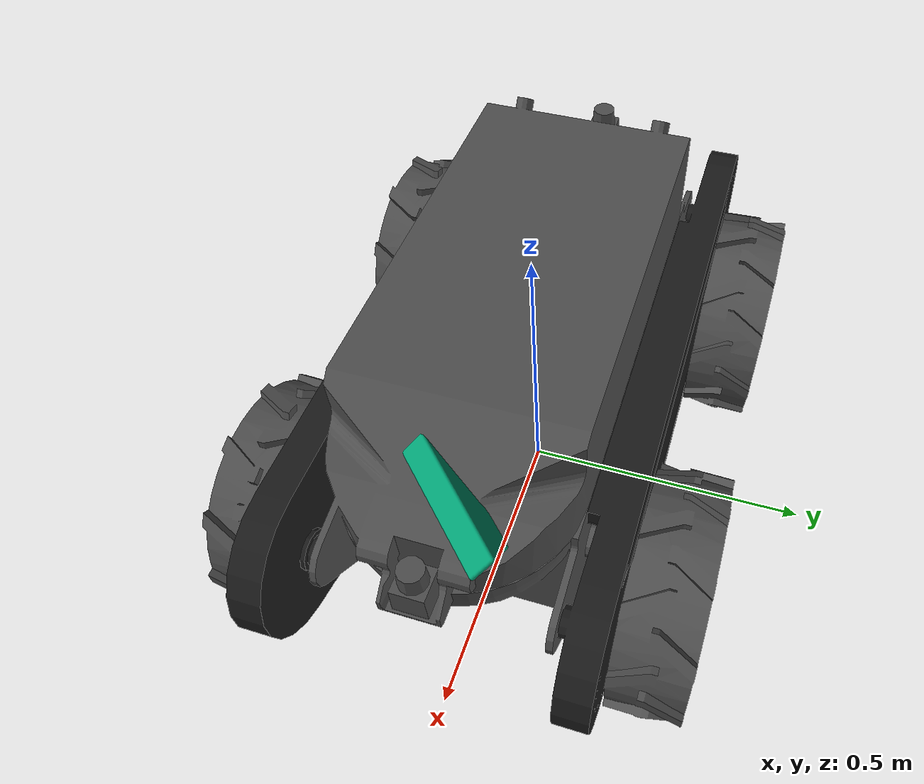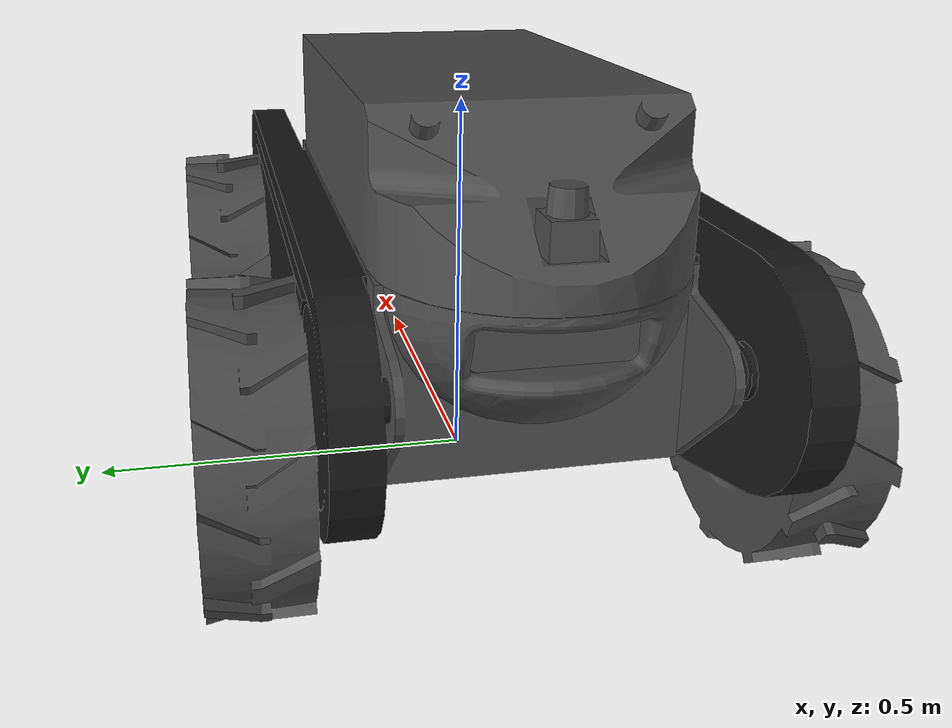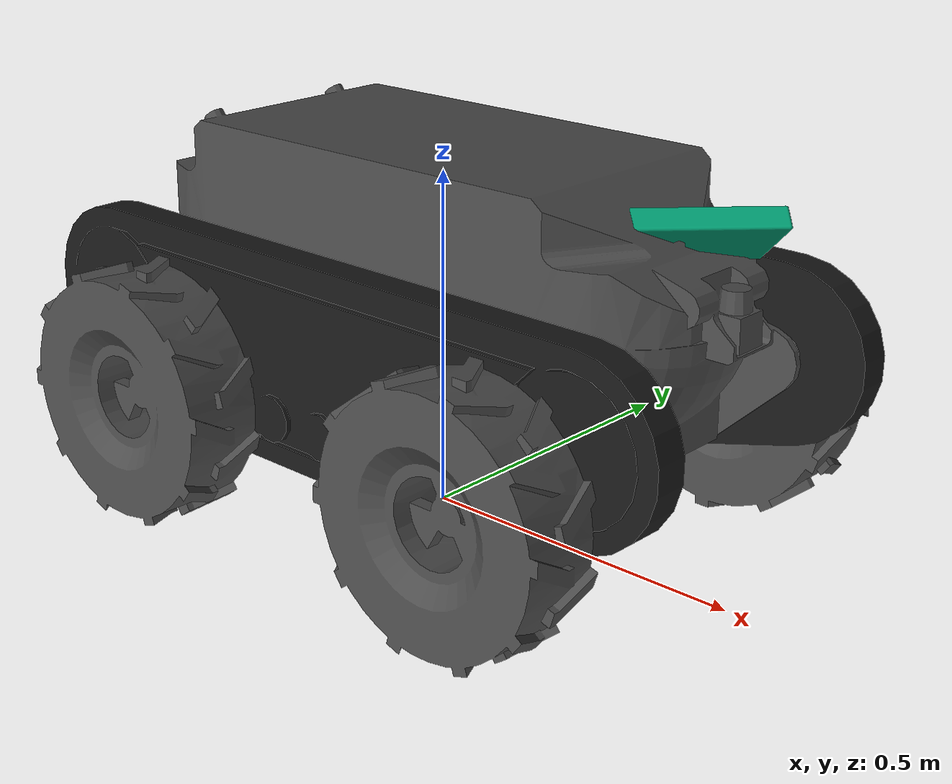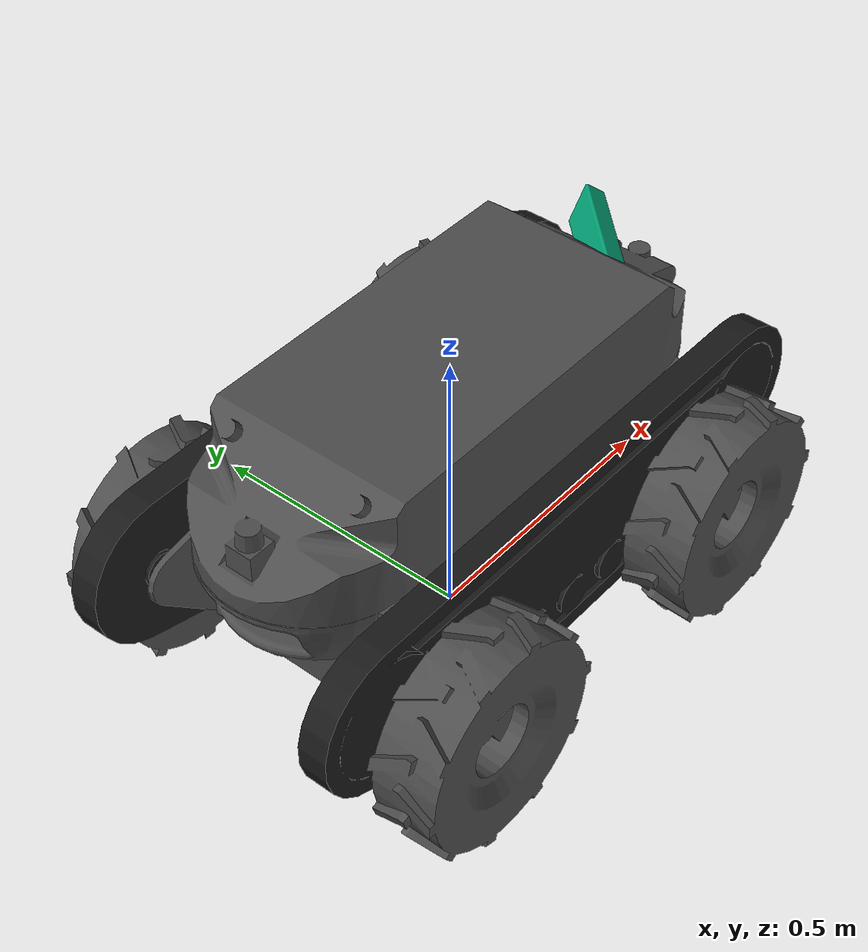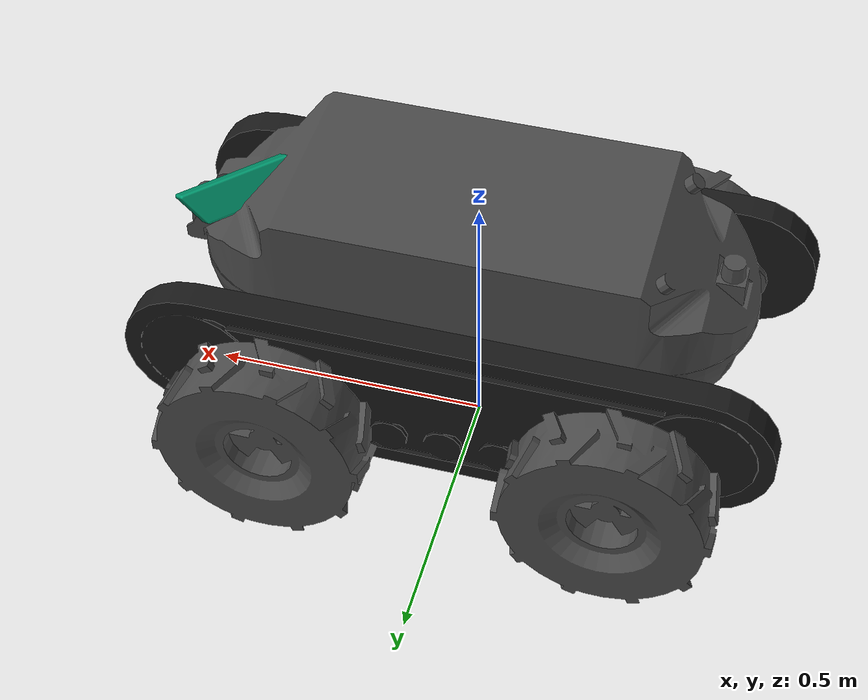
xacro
<?xml version="1.0"?>
<robot name="gball" xmlns:xacro="http://www.ros.org/wiki/xacro">

  <!-- Import all Gazebo-customization elements, including Gazebo colors -->
  <xacro:include filename="$(find guardian_description)/urdf/guardian.gazebo" />
  <xacro:include filename="$(find guardian_description)/urdf/sensors/kinect.urdf.xacro"/>

  <!-- Robot mechanical and motor parameters -->
  <xacro:property name="PI" value="3.1415926535897931"/>
  <xacro:property name="wheel_offset_x" value="0.300" />    <!-- x,y,z in base_footprint CS -->
  <xacro:property name="wheel_offset_y" value="0.265" />
  <xacro:property name="wheel_offset_z" value="0.0" />
  <xacro:property name="wheel_joint_damping" value="0.0" />
  <xacro:property name="wheel_joint_friction" value="0.0" />

  <xacro:property name="wheel_joint_effort_limit" value="200.0" />
  <xacro:property name="wheel_joint_velocity_limit" value="200.0" />
  <xacro:property name="wheel_mechanical_reduction" value="1.0" />

  <xacro:property name="ptz_joint_effort_limit" value="100.0" />
  <xacro:property name="ptz_joint_velocity_limit" value="100.0"/>
  <xacro:property name="ptz_joint_friction" value="0.1" />
  <xacro:property name="ptz_joint_damping" value="0.1" />
  <xacro:property name="ptz_mechanical_reduction" value="1.0" />

  <!-- Used for fixing robot to Gazebo 'base_link' -->

  <!-- BASE FOOTPRINT -->
  <!-- base_footprint is a fictitious link(frame) that is on the ground right below base_link origin,
             navigation stack depends on this frame -->
  <link name="base_footprint">
      <visual>
          <origin xyz="0 0 0" rpy="0 0 0" />
          <geometry>
             <box size="0.001 0.001 0.001" />
          </geometry>
      </visual>

      <collision>
          <origin xyz="0 0 0" rpy="0 0 0" />
          <geometry>
            <box size="0.001 0.001 0.001" />
         </geometry>
     </collision>
  </link>

  <joint name="base_footprint_joint" type="fixed">
     <!--NB: While you would think this would make it go up, it is oddly reversed.
      This moves the joint to 0,0,0 where we want it for rviz, etc. -->
     <!-- origin xyz="0 0 0.130" rpy="0 0 0" / -->
     <origin xyz="0 0 0.18" rpy="0 0 0" />
     <parent link="base_footprint"/>
     <child link="base_link" />
  </joint>

  <!-- BASE_LINK (DarkGrey) -->
  <link name="base_link">
    <inertial>
      <mass value="95.0" />
      <origin xyz="0 0 0" />
      <inertia  ixx="3.737" ixy="0.008"  ixz="-0.144"  iyy="8.311"  iyz="-0.004"  izz="8.893" />
    </inertial>
    <visual>
       <origin xyz="0 0 0" rpy="0 0 0" />
       <geometry>
	     <mesh filename="package://guardian_description/meshes/chassis/two_lasers/guardian2lasers.dae"/>
       </geometry>
    </visual>
    <collision>
       <origin xyz="0 0 0" rpy="0 0 0 " />
       <geometry>
         <mesh filename="package://guardian_description/meshes/chassis/two_lasers/guardian2lasers.dae"/>
       </geometry>
    </collision>
  </link>

<!-- ################# TRACKS ################# -->
  <!-- LEFT TRACK (BLACK) -->
  <link name="left_track">
    <inertial>
      <mass value="1.250" />
      <origin xyz="0 0 0" />
      <inertia  ixx="0.0109375" ixy="0.0"  ixz="0.0"  iyy="0.021125"  iyz="0.0"  izz="0.0109375" />
    </inertial>
    <visual>
        <origin xyz="0 0 0" rpy="0 0 0" />
        <geometry>
	 <mesh filename="package://guardian_description/meshes/others/v5/trackV5_l.dae"/>
        </geometry>
	<material name="black">
  		<color rgba="0.1 0.1 0.1 1"/>
      	</material>
    </visual>
    <collision>
       <origin xyz="0 0 0" rpy="0 0 0" />
       <geometry>
         <mesh filename="package://guardian_description/meshes/others/v5/trackV5_l.dae"/>
       </geometry>
    </collision>
  </link>

  <joint name="joint_left_track" type="fixed">
    <parent link="base_link"/>
    <child link="left_track"/>
    <origin xyz="0.0 0.0 0.0" rpy="0 0 0" />
  </joint>

  <!-- RIGHT TRACK (BLACK) -->
  <link name="right_track">
    <inertial>
      <mass value="1.250" />
      <origin xyz="0 0 0" />
      <inertia  ixx="0.0109375" ixy="0.0"  ixz="0.0"  iyy="0.021125"  iyz="0.0"  izz="0.0109375" />
    </inertial>
    <visual>
       <origin xyz="0 0 0" rpy="0 0 0" />
       <geometry>
	 <mesh filename="package://guardian_description/meshes/others/v5/trackV5_l.dae"/>
       </geometry>
	<material name="black">
		<color rgba="0.1 0.1 0.1 1"/>
      	</material>
    </visual>
    <collision>
       <origin xyz="0 0 0" rpy="0 0 0" />
       <geometry>
         <mesh filename="package://guardian_description/meshes/others/v5/trackV5_l.dae"/>
       </geometry>
    </collision>
  </link>

  <joint name="joint_right_track" type="fixed">
    <parent link="base_link"/>
    <child link="right_track"/>
    <origin xyz="0.0 0.0 0.0" rpy="0 0 3.1415926535" />
  </joint>

<!-- ################# WHEELS ################# -->
  <!-- BACK LEFT WHEEL (GREY) -->
  <link name="back_left_wheel">
    <inertial>
      <mass value="4.5" />
      <origin xyz="0 0 0" rpy="0 0 3.1416"/>
      <inertia  ixx="0.059" ixy="0.0"  ixz="0.0"  iyy="0.055"  iyz="0.0"  izz="0.059" />
    </inertial>
    <visual>
       <origin xyz="0 0 0" rpy="0 0 ${PI}" />
       <geometry>
	 <mesh filename="package://guardian_description/meshes/wheel.dae"/>
       </geometry>
	<material name="grey">
		<color rgba="0.3 0.3 0.3 1"/>
      	</material>
    </visual>
    <collision>
       <origin xyz="0 0 0" rpy="0 0 ${PI}" />
       <geometry>
         <mesh filename="package://guardian_description/meshes/wheel.dae"/>
       </geometry>
    </collision>
  </link>

  <joint name="joint_back_left_wheel" type="continuous">
    <parent link="base_link"/>
    <child link="back_left_wheel"/>
    <origin xyz="-${wheel_offset_x} ${wheel_offset_y} 0" rpy="0 0 0" />
    <axis xyz="0 1 0" rpy="0 0 0" />
    <limit effort="${wheel_joint_effort_limit}" velocity="${wheel_joint_velocity_limit}"/>
    <joint_properties damping="${wheel_joint_damping}" friction="{wheel_joint_friction}"/>
  </joint>

  <transmission name="joint_blw_trans">
	 <type>transmission_interface/SimpleTransmission</type>
     <joint name="joint_back_left_wheel" />
     <actuator name="joint_blw_motor">
	    <hardwareInterface>EffortJointInterface</hardwareInterface>
        <mechanicalReduction>${wheel_mechanical_reduction}</mechanicalReduction>
     </actuator>
  </transmission>

  <!-- BACK RIGHT WHEEL (BLACK) -->
  <link name="back_right_wheel">
    <inertial>
      <mass value="4.5" />
      <origin xyz="0 0 0" rpy="0 0 0"/>
      <inertia  ixx="0.059" ixy="0.0"  ixz="0.0"  iyy="0.055"  iyz="0.0"  izz="0.059" />
    </inertial>

    <visual>
       <origin xyz="0 0 0" rpy="0 0 0" />
       <geometry>
         <mesh filename="package://guardian_description/meshes/wheel.dae"/>
       </geometry>
	<material name="grey">
		<color rgba="0.3 0.3 0.3 1"/>
      	</material>
    </visual>
    <collision>
       <origin xyz="0 0 0" rpy="0 0 0" />
       <geometry>
         <mesh filename="package://guardian_description/meshes/wheel.dae"/>
       </geometry>
    </collision>
  </link>

  <joint name="joint_back_right_wheel" type="continuous">
    <parent link="base_link"/>
    <child link="back_right_wheel"/>
    <origin xyz="-${wheel_offset_x} -${wheel_offset_y} 0" rpy="0 0 0" />
    <axis xyz="0 1 0" rpy="0 0 0" />
    <limit effort="${wheel_joint_effort_limit}" velocity="${wheel_joint_velocity_limit}"/>
    <joint_properties damping="${wheel_joint_damping}" friction="{wheel_joint_friction}"/>
  </joint>

  <transmission name="joint_brw_trans">
    <type>transmission_interface/SimpleTransmission</type>
    <joint name="joint_back_right_wheel" />
    <actuator name="joint_brw_motor">
	   <hardwareInterface>EffortJointInterface</hardwareInterface>
       <mechanicalReduction>${wheel_mechanical_reduction}</mechanicalReduction>
    </actuator>
  </transmission>

  <!-- FRONT LEFT WHEEL (GREY) -->
  <link name="front_left_wheel">
    <inertial>
      <mass value="4.5" />
      <origin xyz="0 0 0" rpy="0 0 3.1416"/>
      <inertia  ixx="0.059" ixy="0.0"  ixz="0.0"  iyy="0.055"  iyz="0.0"  izz="0.059" />
    </inertial>

    <visual>
       <origin xyz="0 0 0" rpy="0 0 ${PI}" />
       <geometry>
         <mesh filename="package://guardian_description/meshes/wheel.dae"/>
       </geometry>
	<material name="grey">
		<color rgba="0.3 0.3 0.3 1"/>
      	</material>
    </visual>
    <collision>
       <origin xyz="0 0 0" rpy="0 0 ${PI}" />
       <geometry>
         <mesh filename="package://guardian_description/meshes/wheel.dae"/>
       </geometry>
    </collision>
  </link>

  <joint name="joint_front_left_wheel" type="continuous">
    <parent link="base_link"/>
    <child link="front_left_wheel"/>
    <origin xyz="${wheel_offset_x} ${wheel_offset_y} 0" rpy="0 0 0" />
    <axis xyz="0 1 0" rpy="0 0 0" />
    <limit effort="${wheel_joint_effort_limit}" velocity="${wheel_joint_velocity_limit}"/>
    <joint_properties damping="${wheel_joint_damping}" friction="{wheel_joint_friction}"/>
  </joint>

  <transmission name="joint_flw_trans">
	 <type>transmission_interface/SimpleTransmission</type>
     <joint name="joint_front_left_wheel" />
     <actuator name="joint_flw_motor">
	   <hardwareInterface>EffortJointInterface</hardwareInterface>
       <mechanicalReduction>${wheel_mechanical_reduction}</mechanicalReduction>
     </actuator>
  </transmission>

  <!-- FRONT RIGHT WHEEL (GREY) -->
  <link name="front_right_wheel">
    <inertial>
      <mass value="4.5" />
      <origin xyz="0 0 0" rpy="0 0 0"/>
      <inertia  ixx="0.059" ixy="0.0"  ixz="0.0"  iyy="0.055"  iyz="0.0"  izz="0.059" />
    </inertial>

    <visual>
       <origin xyz="0 0 0" rpy="0 0 0" />
       <geometry>
         <mesh filename="package://guardian_description/meshes/wheel.dae"/>
       </geometry>
	<material name="grey">
		<color rgba="0.3 0.3 0.3 1"/>
      	</material>
    </visual>
    <collision>
       <origin xyz="0 0 0" rpy="0 0 0" />
       <geometry>
         <mesh filename="package://guardian_description/meshes/wheel.dae"/>
       </geometry>
    </collision>
  </link>

  <joint name="joint_front_right_wheel" type="continuous">
    <parent link="base_link"/>
    <child link="front_right_wheel"/>
    <origin xyz="${wheel_offset_x} -${wheel_offset_y} 0" rpy="0 0 0" />
    <axis xyz="0 1 0" rpy="0 0 0" />
    <limit effort="${wheel_joint_effort_limit}" velocity="${wheel_joint_velocity_limit}"/>
    <joint_properties damping="${wheel_joint_damping}" friction="{wheel_joint_friction}"/>
  </joint>

  <transmission name="joint_frw_trans">
	 <type>transmission_interface/SimpleTransmission</type>
     <joint name="joint_front_right_wheel" />
     <actuator name="joint_frw_motor">
	   <hardwareInterface>EffortJointInterface</hardwareInterface>
       <mechanicalReduction>${wheel_mechanical_reduction}</mechanicalReduction>
     </actuator>
  </transmission>

<!-- ################# SENSORS ################# -->
  <sensor_kinect  parent="base_link"/>

  <!-- FRONT - TILT LASER - URG-04LX -->
  <joint name="hokuyo_tilt_laser_joint" type="revolute">
     <axis xyz="0 1 0" />
     <!--origin xyz="0.180 0.0 0.270"/-->
     <origin xyz="0.48856 0 0.24" rpy="0 0 0" />
     <parent link="base_link"/>
     <child link="hokuyo_tilt_laser_link"/>
     <limit effort="${ptz_joint_effort_limit}" velocity="${ptz_joint_velocity_limit}" lower="-1.5708" upper="1.5708"/>
     <joint_properties damping="${ptz_joint_damping}" friction="{ptz_joint_friction}"/>
  </joint>

  <link name="hokuyo_tilt_laser_link">
     <inertial>
       <mass value="0.1" />
       <origin xyz="0 0 0" rpy="0 0 0" />
       <inertia ixx="0.1" ixy="0" ixz="0" iyy="0.1" iyz="0" izz="0.1" />
    </inertial>
          <!--mesh filename="package://pr2_description/meshes/tilting_laser_v0/tilting_hokuyo.dae" /-->

  </link>

  <transmission name="joint_tilt_laser_trans">
   <type>transmission_interface/SimpleTransmission</type>
     <joint name="hokuyo_tilt_laser_joint" />
     <actuator name="tilt_laser_motor">
     <hardwareInterface>EffortJointInterface</hardwareInterface>
       <mechanicalReduction>${ptz_mechanical_reduction}</mechanicalReduction>
     </actuator>
  </transmission>

  <!-- HOKUYO SENSOR -->
  <joint name="hokuyo_base_laser_joint" type="fixed">
     <axis xyz="0 1 0" />
     <origin xyz="-0.43235 0 0.3" rpy="0 0 ${PI}" />
     <parent link="base_link"/>
     <child link="hokuyo_base_laser_link"/>
  </joint>

  <!-- Hokuyo Laser -->
  <link name="hokuyo_base_laser_link">

    <inertial>
      <mass value="1e-5" />
      <origin xyz="0 0 0" rpy="0 0 0"/>
      <inertia ixx="1e-6" ixy="0" ixz="0" iyy="1e-6" iyz="0" izz="1e-6" />
    </inertial>
  </link>

  <!-- IMU SENSOR -->
  <joint name="imu_joint" type="fixed">
      <axis xyz="1 0 0"/>
      <origin xyz="0 0 0.2825"/>
      <parent link="base_link"/>
      <child link="imu_link"/>
  </joint>

  <link name="imu_link">
      <inertial>
        <mass value="0.001"/>
        <origin rpy="0 0 0" xyz="0 0 0"/>
        <inertia ixx="0.0001" ixy="0" ixz="0" iyy="0.000001" iyz="0" izz="0.0001"/>
      </inertial>
      <visual>
        <origin rpy="0 0 0" xyz="0 0 0"/>
        <geometry>
          <box size="0.001 0.001 0.001"/>
        </geometry>
      </visual>
      <collision>
        <origin rpy="0 0 0" xyz="0 0 0"/>
        <geometry>
          <box size=".001 .001 .001"/>
        </geometry>
      </collision>
  </link>
</robot>

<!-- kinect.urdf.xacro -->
<robot name="sensor_kinect" xmlns:xacro="http://ros.org/wiki/xacro">
  <xacro:include filename="$(find guardian_description)/urdf/sensors/kinect_properties.urdf.xacro"/>
  <xacro:include filename="$(find guardian_description)/urdf/sensors/kinect_gazebo.urdf.xacro"/>

  <!-- Parameterised in part by the values in turtlebot_properties.urdf.xacro -->
  <xacro:macro name="sensor_kinect" params="parent" >
    <joint name="camera_rgb_joint" type="fixed">
      <origin xyz="${cam_px} ${cam_py} ${cam_pz}" rpy="${cam_or} ${cam_op} ${cam_oy}"/>
      <parent link="${parent}"/>
      <child link="camera_rgb_frame" />
    </joint>
    <link name="camera_rgb_frame">
      <inertial>
        <mass value="0.001" />
        <origin xyz="0 0 0" />
        <inertia ixx="0.0001" ixy="0.0" ixz="0.0"
                 iyy="0.0001" iyz="0.0"
                 izz="0.0001" />
      </inertial>
    </link>
    <joint name="camera_rgb_optical_joint" type="fixed">
      <origin xyz="0 0 0" rpy="${-M_PI/2} 0 ${-M_PI/2}" />
      <parent link="camera_rgb_frame" />
      <child link="camera_rgb_optical_frame" />
    </joint>
    <link name="camera_rgb_optical_frame">
      <inertial>
        <mass value="0.001" />
        <origin xyz="0 0 0" />
        <inertia ixx="0.0001" ixy="0.0" ixz="0.0"
                 iyy="0.0001" iyz="0.0"
                 izz="0.0001" />
      </inertial>
    </link>

  <joint name="camera_joint" type="fixed">
    <origin xyz="-0.031 ${-cam_py} -0.016" rpy="0 0 0"/>
    <parent link="camera_rgb_frame"/>
    <child link="camera_link"/>
  </joint>
    <link name="camera_link">
    <visual>
     <origin xyz="0 0 0" rpy="0 0 ${M_PI/2}"/>
      <geometry>
       <mesh filename="package://guardian_description/meshes/sensors/kinect.dae"/>
      </geometry>
    </visual>
	  <collision>
      <origin xyz="0.0 0.0 0.0" rpy="0 0 0"/>
	    <geometry>
	      <box size="0.07271 0.27794 0.073"/>
	    </geometry>
	  </collision>
    <inertial>
      <mass value="0.001" />
      <origin xyz="0 0 0" />
      <inertia ixx="0.0001" ixy="0.0" ixz="0.0"
               iyy="0.0001" iyz="0.0"
               izz="0.0001" />
    </inertial>
  </link>

	<joint name="camera_depth_joint" type="fixed">
	  <origin xyz="0 ${2 * -cam_py} 0" rpy="0 0 0" />
	  <parent link="camera_rgb_frame" />
	  <child link="camera_depth_frame" />
	</joint>
	<link name="camera_depth_frame">
    <inertial>
      <mass value="0.001" />
      <origin xyz="0 0 0" />
      <inertia ixx="0.0001" ixy="0.0" ixz="0.0"
               iyy="0.0001" iyz="0.0"
               izz="0.0001" />
    </inertial>
	</link>
	<joint name="camera_depth_optical_joint" type="fixed">
	  <origin xyz="0 0 0" rpy="${-M_PI/2} 0 ${-M_PI/2}" />
	  <parent link="camera_depth_frame" />
	  <child link="camera_depth_optical_frame" />
	</joint>
	<link name="camera_depth_optical_frame">
    <inertial>
      <mass value="0.001" />
      <origin xyz="0 0 0" />
      <inertia ixx="0.0001" ixy="0.0" ixz="0.0"
               iyy="0.0001" iyz="0.0"
               izz="0.0001" />
    </inertial>
	</link>

	<!-- Kinect sensor for simulation -->
	<kinect_sim_3dsensor/>
  </xacro:macro>
</robot>

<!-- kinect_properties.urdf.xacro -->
<robot>
	<property name="M_PI" value="3.1415926535897931" />
	<property name="cam_px" value="0.4" />
	<property name="cam_py" value="0" />
	<property name="cam_pz" value="0.33" />

	<!-- van back test -->

	<!-- van side test -->
	<property name="cam_or" value="0" />
	<property name="cam_op" value="-1.0" />
	<property name="cam_oy" value="-0.77" />
</robot>
